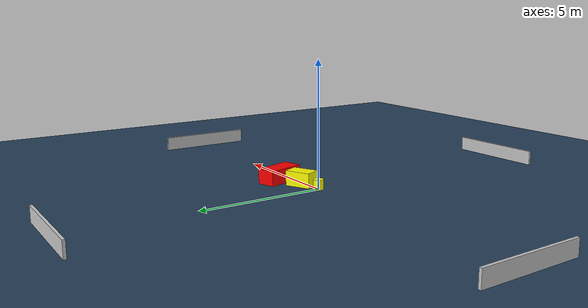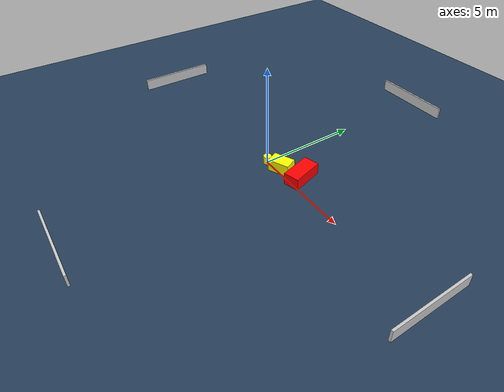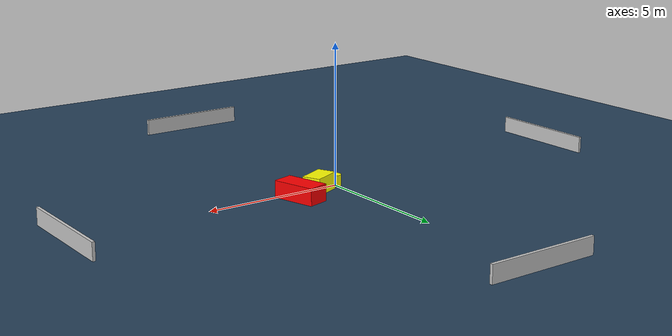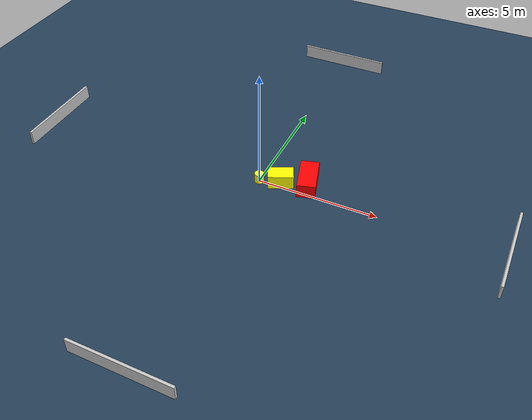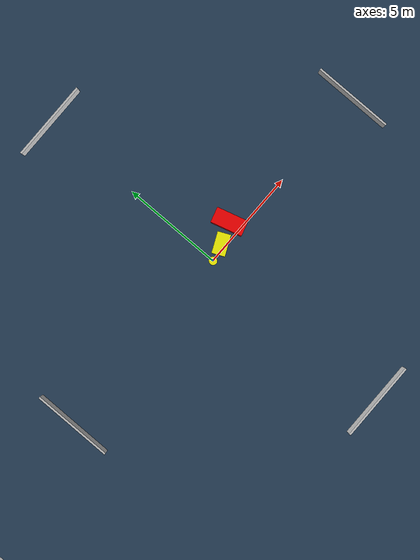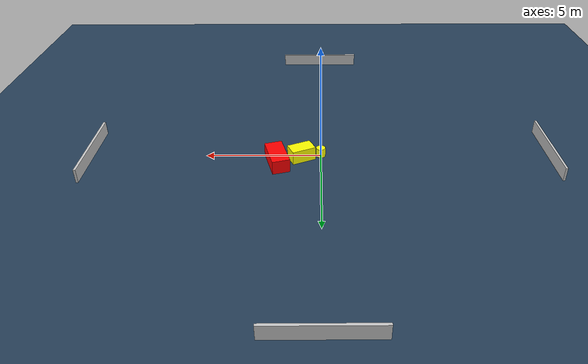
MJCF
<?xml version="1.0" ?>
<mujoco model="generated_environment">
  <option timestep="0.01" integrator="RK4" cone="elliptic"/>
  <default>
    <geom density="1"/>
  </default>
  <asset>
    <texture builtin="gradient" height="3072" name="skybox" rgb1="0.3 0.5 0.7" rgb2="0 0 0" type="skybox" width="512"/>
    <texture builtin="checker" height="300" name="groundplane" rgb1="0.2 0.3 0.4" rgb2="0.1 0.2 0.3" type="2d" width="300"/>
    <material name="groundplane" reflectance="0.2" texrepeat="5 5" texture="groundplane"/>
  </asset>
  <worldbody>
    <light dir="0 0 -1" directional="true" pos="0 0 1.5"/>
    <geom condim="3" friction="0.5 0.005 0.001" material="groundplane" name="floor" pos="0 0 0" size="0 0 0.05" type="plane"/>
    <body name="walls">
      <geom name="wall_1" condim="4" pos="-10.0 0.0 0.3" rgba="0.800000011920929 0.800000011920929 0.800000011920929 1.0" size="0.05 2.0 0.3" type="box"/>
      <geom name="wall_2" condim="4" pos="10.0 0.0 0.3" rgba="0.800000011920929 0.800000011920929 0.800000011920929 1.0" size="0.05 2.0 0.3" type="box"/>
      <geom name="wall_3" condim="4" pos="0.0 -10.0 0.3" rgba="0.800000011920929 0.800000011920929 0.800000011920929 1.0" size="2.0 0.05 0.3" type="box"/>
      <geom name="wall_4" condim="4" pos="0.0 10.0 0.3" rgba="0.800000011920929 0.800000011920929 0.800000011920929 1.0" size="2.0 0.05 0.3" type="box"/>
    </body>
    <body name="robot">
      <joint name="joint_x" type="slide" pos="0 0 0" axis="1 0 0"/>
      <joint name="joint_y" type="slide" pos="0 0 0" axis="0 1 0"/>
      <geom name="robot" type="cylinder" pos="0.0 0.0 0.2" size="0.2 0.2 0.0" mass="5.0" friction="1.0 0.005 0.0001" condim="4" rgba="1.0 1.0 0.0 1.0"/>
    </body>
    <body name="obstacle_1_movable">
      <geom name="obstacle_1_movable" condim="4" pos="0.8421974209832874 0.22059325942435165 0.3" euler="0 0 114.41911435693086" friction="0.0 0.005 0.001" rgba="1.0 1.0 0.0 1.0" size="0.32447010649692426 0.5257035124630625 0.3" type="box" mass="0.1"/>
      <joint type="free"/>
    </body>
    <body name="obstacle_2_static">
      <geom name="obstacle_2_static" condim="4" pos="1.8759957948896155 0.6098175644074528 0.3" euler="0 0 15.734972551385823" friction="0.0 0.005 0.001" rgba="1.0 0.0 0.0 1.0" size="0.3818155058436348 0.7870084155896133 0.3" type="box"/>
    </body>
  </worldbody>
  <actuator>
    <motor name="actuator_x" joint="joint_x" gear="1" ctrlrange="-1 1"/>
    <motor name="actuator_y" joint="joint_y" gear="1" ctrlrange="-1 1"/>
  </actuator>
</mujoco>
